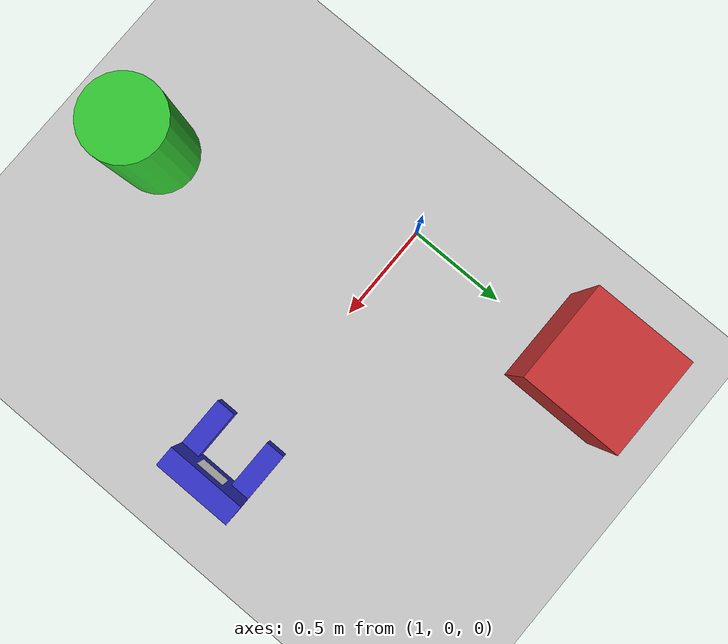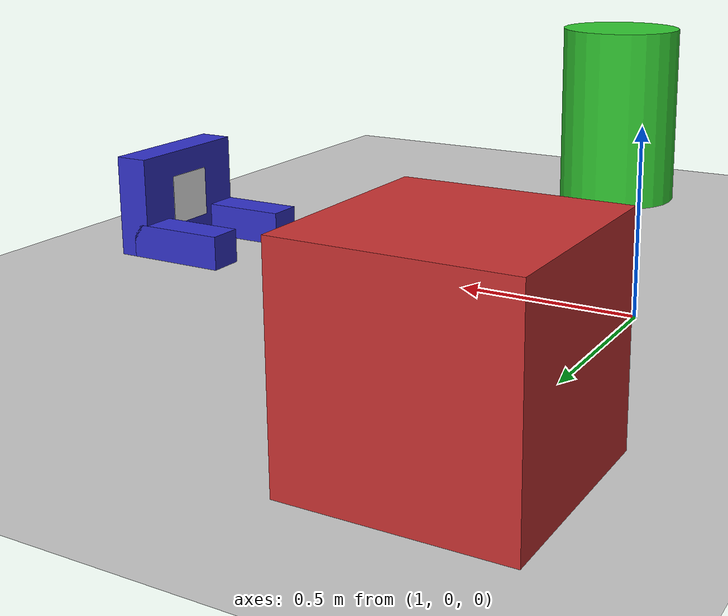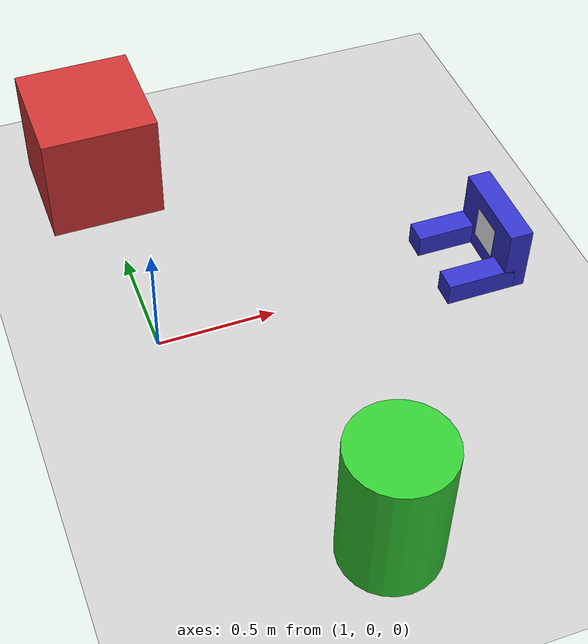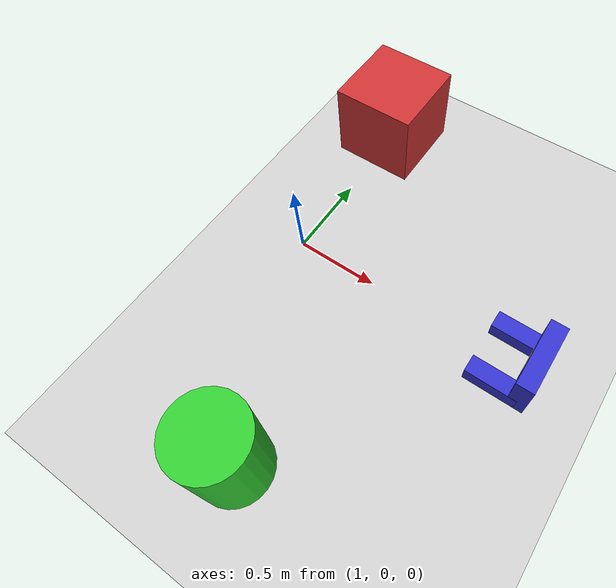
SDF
<?xml version="1.0" ?>
<sdf version="1.10">
  <world name="docking_world">
    <plugin filename="gz-sim-physics-system" name="gz::sim::systems::Physics"/>
    <plugin filename="gz-sim-user-commands-system" name="gz::sim::systems::UserCommands"/>
    <plugin filename="gz-sim-scene-broadcaster-system" name="gz::sim::systems::SceneBroadcaster"/>
    <plugin filename="gz-sim-sensors-system" name="gz::sim::systems::Sensors">
      <render_engine>ogre2</render_engine>
    </plugin>

    <light type="directional" name="sun">
      <cast_shadows>true</cast_shadows>
      <pose>0 0 10 0 0 0</pose>
      <diffuse>0.8 0.8 0.8 1</diffuse>
      <specular>0.2 0.2 0.2 1</specular>
      <direction>-0.5 0.1 -0.9</direction>
    </light>

    <model name="ground_plane">
      <static>true</static>
      <link name="link">
        <collision name="collision"><geometry><plane><normal>0 0 1</normal><size>10 10</size></plane></geometry></collision>
        <visual name="visual">
          <geometry><plane><normal>0 0 1</normal><size>10 10</size></plane></geometry>
          <material><ambient>0.8 0.8 0.8 1</ambient><diffuse>0.8 0.8 0.8 1</diffuse></material>
        </visual>
      </link>
    </model>

    <model name="obstacle_box">
      <pose>1.0 1.0 0.25 0 0 0</pose>
      <static>true</static>
      <link name="link">
        <collision name="col"><geometry><box><size>0.5 0.5 0.5</size></box></geometry></collision>
        <visual name="vis">
          <geometry><box><size>0.5 0.5 0.5</size></box></geometry>
          <material><ambient>0.8 0.2 0.2 1</ambient></material>
        </visual>
      </link>
    </model>

    <model name="obstacle_cylinder">
      <pose>1.5 -1.2 0.3 0 0 0</pose>
      <static>true</static>
      <link name="link">
        <collision name="col"><geometry><cylinder><radius>0.2</radius><length>0.6</length></cylinder></geometry></collision>
        <visual name="vis">
          <geometry><cylinder><radius>0.2</radius><length>0.6</length></cylinder></geometry>
          <material><ambient>0.2 0.8 0.2 1</ambient></material>
        </visual>
      </link>
    </model>

    <model name="docking_station">
      <pose>2.5 0 0 0 0 3.14159</pose>
      <static>true</static>
      <link name="dock_link">
        <visual name="back_wall"><pose>0 0 0.15 0 0 0</pose><geometry><box><size>0.1 0.4 0.3</size></box></geometry><material><ambient>0.2 0.2 0.8 1</ambient></material></visual>
        <collision name="back_wall_col"><pose>0 0 0.15 0 0 0</pose><geometry><box><size>0.1 0.4 0.3</size></box></geometry></collision>

        <visual name="left_wall"><pose>0.15 0.15 0.05 0 0 0</pose><geometry><box><size>0.3 0.1 0.1</size></box></geometry><material><ambient>0.2 0.2 0.8 1</ambient></material></visual>
        <collision name="left_wall_col"><pose>0.15 0.15 0.05 0 0 0</pose><geometry><box><size>0.3 0.1 0.1</size></box></geometry></collision>

        <visual name="right_wall"><pose>0.15 -0.15 0.05 0 0 0</pose><geometry><box><size>0.3 0.1 0.1</size></box></geometry><material><ambient>0.2 0.2 0.8 1</ambient></material></visual>
        <collision name="right_wall_col"><pose>0.15 -0.15 0.05 0 0 0</pose><geometry><box><size>0.3 0.1 0.1</size></box></geometry></collision>

        <visual name="aruco_tag_vis">
          <pose>0.051 0 0.15 0 0 0</pose>
          <geometry><box><size>0.001 0.15 0.15</size></box></geometry>
          <material>
            <ambient>1 1 1 1</ambient>
            <diffuse>1 1 1 1</diffuse>
            <pbr>
              <metal>
                <albedo_map>/home/ananya/Yellow_Rover/src/rover_description/model/aruco_marker.png</albedo_map>
              </metal>
            </pbr>
          </material>
        </visual>
      </link>
    </model>
  </world>
</sdf>
